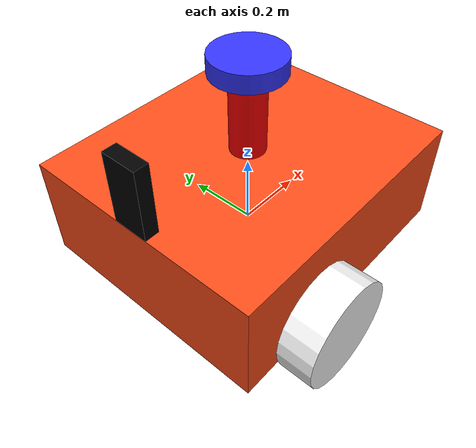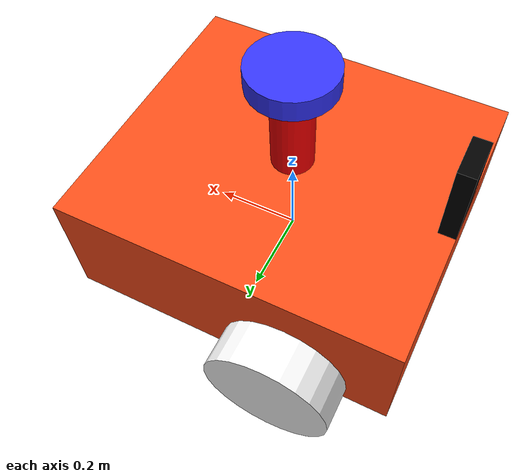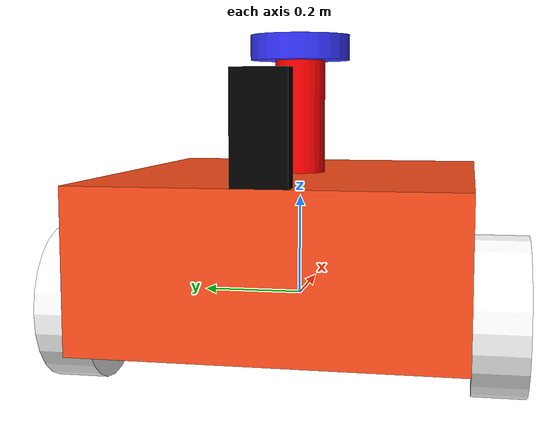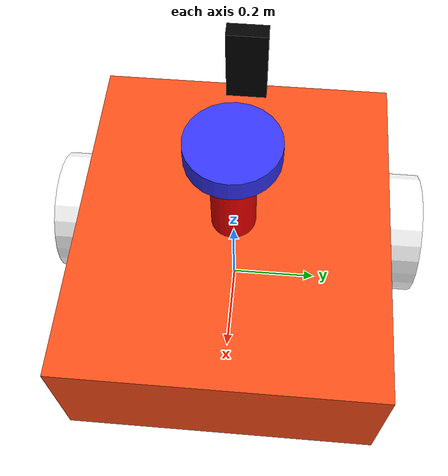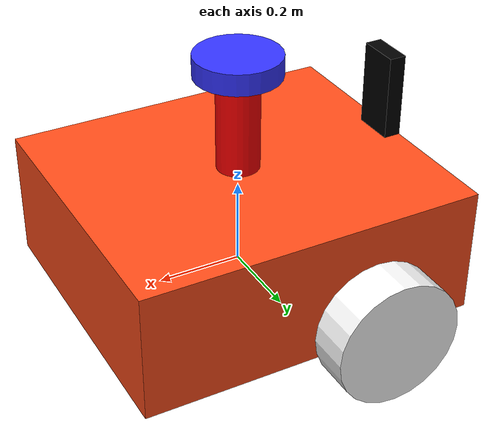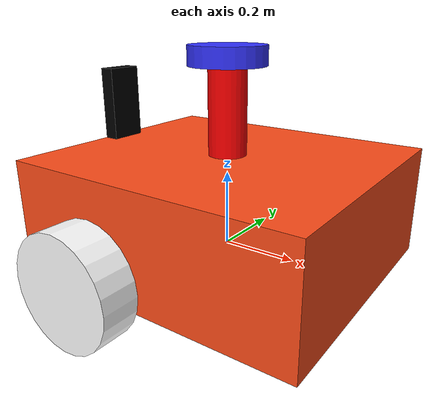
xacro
<?xml version="1.0"?>
<robot xmlns:xacro="http://www.ros.org/wiki/xacro" name="rover">

    <xacro:include filename="inertial_macros.xacro"/>

    <material name="white">
        <color rgba="1 1 1 1"/>
    </material>

    <material name="orange">
        <color rgba="1 0.3 0.1 1"/>
    </material>

    <material name="blue">
        <color rgba="0.2 0.2 1 1"/>
    </material>

    <material name="black">
        <color rgba="0 0 0 1"/>
    </material>

    <material name="red">
        <color rgba="1 0 0 1"/>
    </material>

    <!-- BASE  -->
    <link name="base_link"></link>

    <joint name="base_link_joint" type="fixed">
        <origin xyz="0.0 0.0 0.1" rpy="0.0 0.0 0.0"/>
        <parent link="base_link"/>
        <child link="chassis_link"/>
        <axis xyz="0.0 0.0 0.0"/>
    </joint>

    <joint name="base_footprint_joint" type="fixed">
        <origin xyz="0.0 0.0 0.1" rpy="0.0 0.0 0.0"/>
        <parent link="base_link"/>
        <child link="base_footprint"/>
        <axis xyz="0.0 0.0 0.0"/>
    </joint>

    <link name="base_footprint"></link>

    <!-- CHASSIS -->
    <link name="chassis_link">
        <visual>
            <origin xyz="0.0 0.0 0.0"/>
            <geometry>
                <box size="0.8 0.7 0.3"/>
            </geometry>
            <material name="orange"/>
        </visual>

        <collision>
            <geometry>
                <box size="0.8 0.7 0.3"/>
            </geometry>
        </collision>
        <xacro:inertial_box mass="0.5" x="0.8" y="0.7" z="0.3">
            <origin xyz="0.0 0.0 0.0" rpy="0 0 0"/>
        </xacro:inertial_box>
    </link>

    <gazebo reference="chassis_link">
        <material>Gazebo/Orange</material>
    </gazebo>

    <joint name="wheel_front_right_joint" type="continuous">
        <origin xyz="-0.15 0.4 0.0" rpy="1.57 0.0 0.0"/>
        <parent link="base_link"/>
        <child link="wheel_front_right_link"/>
        <axis xyz="0.0 0.0 1.0"/>
    </joint>

    <!-- WHEEL FRONT RIGHT  -->
    <link name="wheel_front_right_link">
        <visual>
            <geometry>
                <cylinder radius="0.15" length="0.1"/>
            </geometry>
            <material name="white"/>
        </visual>

        <collision>
            <geometry>
                <cylinder radius="0.15" length="0.1"/>
            </geometry>
        </collision>
        <xacro:inertial_cylinder mass="0.1" length="0.15" radius="0.15">
            <origin xyz="0 0 0" rpy="0 0 0"/>
        </xacro:inertial_cylinder>
    </link>

    <gazebo reference="wheel_front_right_link">
        <material>Gazebo/White</material>
    </gazebo>

    <joint name="wheel_front_left_joint_joint" type="continuous">
        <origin xyz="-0.15 -0.4 0.0" rpy="1.57 0.0 0.0"/>
        <parent link="base_link"/>
        <child link="wheel_front_left_link"/>
        <axis xyz="0.0 0.0 1.0"/>
    </joint>

    <!-- WHEEL FRONT LEFT  -->
    <link name="wheel_front_left_link">
        <visual>
            <geometry>
                <cylinder radius="0.15" length="0.1"/>
            </geometry>
            <material name="white"/>
        </visual>

        <collision>
            <geometry>
                <cylinder radius="0.15" length="0.15"/>
            </geometry>
        </collision>

        <xacro:inertial_cylinder mass="0.1" length="0.15" radius="0.15">
            <origin xyz="0 0 0" rpy="0 0 0"/>
        </xacro:inertial_cylinder>
    </link>

    <gazebo reference="wheel_front_left_link">
        <material>Gazebo/White</material>
    </gazebo>

    <!-- CASTER HOLDER -->
    <joint name="caster_cylinder_joint_joint" type="fixed">
        <origin xyz="0.3 0.0 -0.1"/>
        <parent link="chassis_link"/>
        <child link="caster_cylinder_link"/>
    </joint>

    <link name="caster_cylinder_link">
        <visual>
            <geometry>
                <cylinder radius="0.05" length="0.2"/>
            </geometry>
            <material name="black"/>
        </visual>

        <collision>
            <geometry>
                <cylinder radius="0.05" length="0.2"/>
            </geometry>
        </collision>
        <xacro:inertial_cylinder mass="0.1" length="0.2" radius="0.05">
            <origin xyz="0 0 0" rpy="0 0 0"/>
        </xacro:inertial_cylinder>
    </link>

    <gazebo reference="caster_cylinder_link">
        <material>Gazebo/Black</material>
    </gazebo>

    <joint name="caster_joint_joint" type="fixed">
        <origin xyz="0.0 0.0 -0.1"/>
        <parent link="caster_cylinder_link"/>
        <child link="caster_wheel_link"/>
    </joint>

    <!-- CASTER WHEEL -->
    <link name="caster_wheel_link">
        <visual>
            <geometry>
                <sphere  radius="0.05"/>
            </geometry>
        </visual>

        <collision>
            <geometry>
                <sphere  radius="0.05"/>
            </geometry>
        </collision>

        <xacro:inertial_sphere mass="0.1" radius="0.05">
            <origin xyz="0 0 0" rpy="0 0 0"/>
        </xacro:inertial_sphere>
    </link>

    <gazebo reference="caster_wheel_link">
        <material>Gazebo/Black</material>
        <mu1 value="0.001"/>
        <mu2 value="0.001"/>
    </gazebo>

    <joint name="lidar_joint" type="fixed">
        <origin xyz="0.0 0.0 0.25" rpy="0 0 1.5708"/>
        <parent link="chassis_link"/>
        <child link="lidar_holder"/>
    </joint>

    <!-- LIDAR -->
    <link name="lidar_holder">
        <visual>
            <geometry>
                <cylinder radius="0.05" length="0.25"/>
            </geometry>
            <material name="red"/>
        </visual>

        <collision>
            <geometry>
                <cylinder radius="0.05" length="0.25"/>
            </geometry>
        </collision>
        <xacro:inertial_cylinder mass="0.1" length="0.25" radius="0.05">
            <origin xyz="0 0 0" rpy="0 0 0"/>
        </xacro:inertial_cylinder>
    </link>

    <gazebo reference="lidar_holder">
        <material>Gazebo/Red</material>
    </gazebo>

     <!-- LIDAR HOLDER -->
     <joint name="lidar_holder_joint" type="fixed">
        <origin xyz="0.0 0.0 0.15" rpy="0.0 0.0 0"/>
        <parent link="lidar_holder"/>
        <child link="lidar_link"/>
    </joint>

     <!-- LIDAR -->
     <link name="lidar_link">
        <visual>
            <geometry>
                <cylinder radius="0.1" length="0.05"/>
            </geometry>
            <material name="blue"/>
        </visual>

        <collision>
            <geometry>
                <cylinder radius="0.1" length="0.05"/>
            </geometry>
        </collision>
        <xacro:inertial_cylinder mass="0.1" length="0.2" radius="0.1">
            <origin xyz="0 0 0" rpy="0 0 0"/>
        </xacro:inertial_cylinder>
    </link>

    <!-- CAMERA -->
    <joint name="camera_joint" type="fixed">
        <origin xyz="-0.38 0.0 0.25" rpy="0 0 ${pi}"/>
        <parent link="chassis_link"/>
        <child link="camera_link"/>
    </joint>

    <link name="camera_link">
        <visual>
            <geometry>
                <box size="0.04 0.1 0.2"/>
            </geometry>
            <material name="black"/>
        </visual>

        <collision>
            <geometry>
                <box size="0.05 0.1 0.2"/>
            </geometry>
        </collision>
    </link>

    <joint name="camera_optical_joint" type="fixed">
        <parent link="camera_link"/>
        <child link="camera_link_optical"/>
        <origin xyz="0 0 0" rpy="${-pi/2} 0 ${-pi/2}"/>
    </joint>

    <link name="camera_link_optical"></link>

    <!-- GAZEBO Lidar Plugin -->
    <gazebo reference="lidar_link">
        <material>Gazebo/Blue</material>
        <sensor name="laser" type="ray">
          <pose> 0 0 0 0 0 0 </pose>
          <visualize>true</visualize>
          <update_rate>10</update_rate>
          <ray>
            <scan>
              <horizontal>
                <samples>360</samples>
                <min_angle>0.00</min_angle>
                <max_angle>3.14</max_angle>
              </horizontal>
            </scan>
            <range>
              <min>0.3</min>
              <max>12</max>
            </range>
          </ray>
          <plugin name="laser_controller" filename="libgazebo_ros_ray_sensor.so">
            <ros>
                <remapping>~/out:=scan</remapping>
            </ros>
          <output_type>sensor_msgs/LaserScan</output_type>
          <frame_name>lidar_link</frame_name>
          </plugin>
        </sensor>
      </gazebo>

    <!-- CAMERA  Plugin -->
    <gazebo reference="camera_link">
        <material>Gazebo/Black</material>
        <sensor type="camera" name="camera">
        <pose>0 0 0 0 0 0</pose>
        <visualize>true</visualize>
        <update_rate>10.0</update_rate>
        <camera name="head">
        <horizontal_fov>1.3962634</horizontal_fov>
        <image>
            <width>800</width>
            <height>800</height>
            <format>R8G8B8</format>
        </image>
        <clip>
            <near>0.02</near>
            <far>300</far>
        </clip>
        </camera>
        <plugin name="camera_controller" filename="libgazebo_ros_camera.so">
            <alwaysOn>true</alwaysOn>
            <updateRate>0.0</updateRate>
            <cameraName>rrbot/camera1</cameraName>
            <imageTopicName>image_raw</imageTopicName>
            <cameraInfoTopicName>camera_info</cameraInfoTopicName>
            <frameName>camera_link</frameName>
            <hackBaseline>0.07</hackBaseline>
            <distortionK1>0.0</distortionK1>
            <distortionK2>0.0</distortionK2>
            <distortionK3>0.0</distortionK3>
            <distortionT1>0.0</distortionT1>
            <distortionT2>0.0</distortionT2>
        </plugin>
        </sensor>
    </gazebo>
</robot>

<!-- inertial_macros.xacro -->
<robot xmlns:xacro="http://www.ros.org/wiki/xacro"  name="robot">

    <!-- Specify some standard inertial calculations https://en.wikipedia.org/wiki/List_of_moments_of_inertia -->
    <!-- These make use of xacro's mathematical functionality -->

    <xacro:macro name="inertial_sphere" params="mass radius *origin">
        <inertial>
            <xacro:insert_block name="origin"/>
            <mass value="${mass}" />
            <inertia ixx="${(2/5) * mass * (radius*radius)}" ixy="0.0" ixz="0.0"
                    iyy="${(2/5) * mass * (radius*radius)}" iyz="0.0"
                    izz="${(2/5) * mass * (radius*radius)}" />
        </inertial>
    </xacro:macro>

    <xacro:macro name="inertial_box" params="mass x y z *origin">
        <inertial>
            <xacro:insert_block name="origin"/>
            <mass value="${mass}" />
            <inertia ixx="${(1/12) * mass * (y*y+z*z)}" ixy="0.0" ixz="0.0"
                    iyy="${(1/12) * mass * (x*x+z*z)}" iyz="0.0"
                    izz="${(1/12) * mass * (x*x+y*y)}" />
        </inertial>
    </xacro:macro>

    <xacro:macro name="inertial_cylinder" params="mass length radius *origin">
        <inertial>
            <xacro:insert_block name="origin"/>
            <mass value="${mass}" />
            <inertia ixx="${(1/12) * mass * (3*radius*radius + length*length)}" ixy="0.0" ixz="0.0"
                    iyy="${(1/12) * mass * (3*radius*radius + length*length)}" iyz="0.0"
                    izz="${(1/2) * mass * (radius*radius)}" />
        </inertial>
    </xacro:macro>

</robot>
